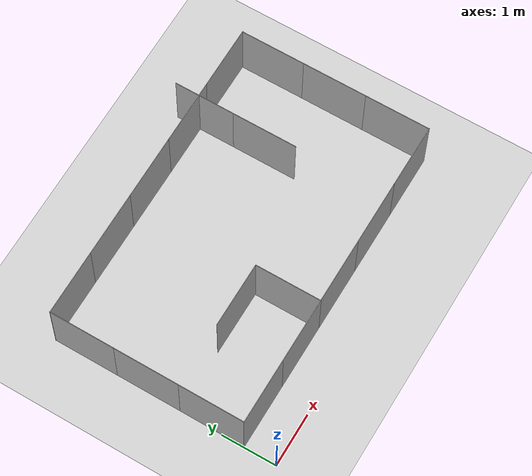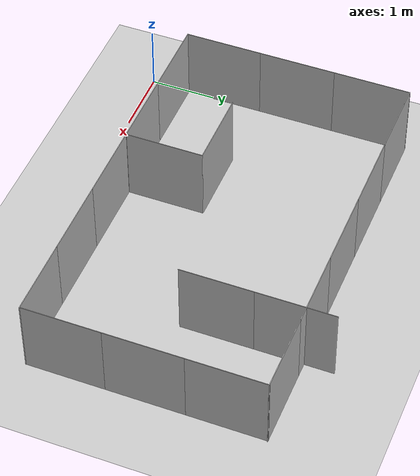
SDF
<?xml version="1.0"?>
<sdf version="1.6">
  <world name="default">

    <include>
      <uri>model://ground_plane</uri>
    </include>

    <include>
      <uri>model://sun</uri>
    </include>

    <scene>
      <shadows>false</shadows>
    </scene>

    <gui fullscreen='0'>
      <camera name='world_camera'>
        <pose frame=''>2.95 2.42 6.35 0 1.570384 1.570384</pose>
        <view_controller>orbit</view_controller>
        <projection_type>perspective</projection_type>
      </camera>
    </gui>

    <physics type="ode">
      <real_time_update_rate>500.0</real_time_update_rate>
      <max_step_size>0.002</max_step_size>
      <real_time_factor>1</real_time_factor>
      <ode>
        <solver>
          <type>quick</type>
          <precon_iters>0</precon_iters>
          <sor>1.400000</sor>
          <use_dynamic_moi_rescaling>1</use_dynamic_moi_rescaling>
        </solver>
        <constraints>
          <cfm>0.00001</cfm>
          <erp>0.2</erp>
          <contact_max_correcting_vel>2000.000000</contact_max_correcting_vel>
          <contact_surface_layer>0.01000</contact_surface_layer>
        </constraints>
      </ode>
    </physics>

    <!-- Maze Model -->
    <model name="maze">
      <static>1</static>
      <include>
        <uri>model://maze</uri>
      </include>
    </model>

    <!-- Camera Sensor -->
    <model name="camera_model">
      <static>1</static>
      <pose>1 1 2 0 0 0</pose>
      <link name="camera_link">
      <always_on>true</always_on>
        <sensor name="camera_sensor" type="camera">
          <pose>0 0 1 0 0 0</pose>
          <camera>
            <horizontal_fov>1.047</horizontal_fov>
            <image>
              <width>1280</width>
              <height>720</height>
              <format>R8G8B8</format>
            </image>
            <clip>
              <near>0.5</near>
              <far>10</far>
            </clip>
            <noise>
              <type>gaussian</type>
              <mean>0.0</mean>
              <stddev>0.007</stddev>
            </noise>
          </camera>
          <plugin name="world_camera" filename="libgazebo_ros_camera.so">
            <always_on>true</always_on>
            <update_rate>30</update_rate>
            <camera_name>world_cam</camera_name>
            <image_topic_name>/world_cam/image</image_topic_name>
            <frame_name>camera_frame</frame_name>
          </plugin>
        </sensor>
      </link>
    </model>

  </world>
</sdf>

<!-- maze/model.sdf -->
<sdf version='1.7'>
  <model name='assembled_maze'>
    <static>1</static>
    <link name='base_link'>
      <pose>0 0 0 0 0 0</pose>

      <!-- Wall 1 -->
      <collision name='wall_1_collision'>
        <geometry>
          <mesh>
            <uri>model://nist_maze_wall_120/meshes/nist_maze_wall_120.dae</uri>
            <scale>1 1 1</scale>
          </mesh>
        </geometry>
        <pose>0.6 0 0 0 -0 0</pose>
      </collision>
      <visual name='wall_1_visual'>
        <geometry>
          <mesh>
            <uri>model://nist_maze_wall_120/meshes/nist_maze_wall_120.dae</uri>
            <scale>1 1 1</scale>
          </mesh>
        </geometry>
        <pose>0.6 0 0 0 -0 0</pose>
      </visual>

      <!-- Wall 2 -->
      <collision name='wall_2_collision'>
        <geometry>
          <mesh>
            <uri>model://nist_maze_wall_120/meshes/nist_maze_wall_120.dae</uri>
            <scale>1 1 1</scale>
          </mesh>
        </geometry>
        <pose>2.96 0 0 0 -0 0</pose>
      </collision>
      <visual name='wall_2_visual'>
        <geometry>
          <mesh>
            <uri>model://nist_maze_wall_120/meshes/nist_maze_wall_120.dae</uri>
            <scale>1 1 1</scale>
          </mesh>
        </geometry>
        <pose>2.96 0 0 0 -0 0</pose>
      </visual>

      <!-- Wall 3 -->
      <collision name='wall_3_collision'>
        <geometry>
          <mesh>
            <uri>model://nist_maze_wall_120/meshes/nist_maze_wall_120.dae</uri>
            <scale>1 1 1</scale>
          </mesh>
        </geometry>
        <pose>1.765 1.19 0 0 -0 0</pose>
      </collision>
      <visual name='wall_3_visual'>
        <geometry>
          <mesh>
            <uri>model://nist_maze_wall_120/meshes/nist_maze_wall_120.dae</uri>
            <scale>1 1 1</scale>
          </mesh>
        </geometry>
        <pose>1.765 1.19 0 0 -0 0</pose>
      </visual>

      <!-- Wall 4 -->
      <collision name='wall_4_collision'>
        <geometry>
          <mesh>
            <uri>model://nist_maze_wall_120/meshes/nist_maze_wall_120.dae</uri>
            <scale>1 1 1</scale>
          </mesh>
        </geometry>
        <pose>2.96 1.195 0 0 -0 1.5708</pose>
      </collision>
      <visual name='wall_4_visual'>
        <geometry>
          <mesh>
            <uri>model://nist_maze_wall_120/meshes/nist_maze_wall_120.dae</uri>
            <scale>1 1 1</scale>
          </mesh>
        </geometry>
        <pose>2.96 1.195 0 0 -0 1.5708</pose>
      </visual>

      <!-- Wall 5 -->
      <collision name='wall_5_collision'>
        <geometry>
          <mesh>
            <uri>model://nist_maze_wall_120/meshes/nist_maze_wall_120.dae</uri>
            <scale>1 1 1</scale>
          </mesh>
        </geometry>
        <pose>0.61 1.195 0 0 -0 1.5708</pose>
      </collision>
      <visual name='wall_5_visual'>
        <geometry>
          <mesh>
            <uri>model://nist_maze_wall_120/meshes/nist_maze_wall_120.dae</uri>
            <scale>1 1 1</scale>
          </mesh>
        </geometry>
        <pose>0.61 1.195 0 0 -0 1.5708</pose>
      </visual>

      <!-- Wall 6 -->
      <collision name='wall_6_collision'>
        <geometry>
          <mesh>
            <uri>model://nist_maze_wall_120/meshes/nist_maze_wall_120.dae</uri>
            <scale>1 1 1</scale>
          </mesh>
        </geometry>
        <pose>5.1 4 0 0 -0 1.5708</pose>
      </collision>
      <visual name='wall_6_visual'>
        <geometry>
          <mesh>
            <uri>model://nist_maze_wall_120/meshes/nist_maze_wall_120.dae</uri>
            <scale>1 1 1</scale>
          </mesh>
        </geometry>
        <pose>5.1 4 0 0 -0 1.5708</pose>
      </visual>

      <!-- Wall 7 -->
      <collision name='wall_7_collision'>
        <geometry>
          <mesh>
            <uri>model://nist_maze_wall_120/meshes/nist_maze_wall_120.dae</uri>
            <scale>1 1 1</scale>
          </mesh>
        </geometry>
        <pose>6.5 3.56 0 0 -0 1.5708</pose>
      </collision>
      <visual name='wall_7_visual'>
        <geometry>
          <mesh>
            <uri>model://nist_maze_wall_120/meshes/nist_maze_wall_120.dae</uri>
            <scale>1 1 1</scale>
          </mesh>
        </geometry>
        <pose>6.5 3.56 0 0 -0 1.5708</pose>
      </visual>

      <!-- Wall 8 -->
      <collision name='wall_8_collision'>
        <geometry>
          <mesh>
            <uri>model://nist_maze_wall_120/meshes/nist_maze_wall_120.dae</uri>
            <scale>1 1 1</scale>
          </mesh>
        </geometry>
        <pose>5.1 2.9 0 0 -0 1.5708</pose>
      </collision>
      <visual name='wall_8_visual'>
        <geometry>
          <mesh>
            <uri>model://nist_maze_wall_120/meshes/nist_maze_wall_120.dae</uri>
            <scale>1 1 1</scale>
          </mesh>
        </geometry>
        <pose>5.1 2.9 0 0 -0 1.5708</pose>
      </visual>

      <!-- Wall 9 -->
      <collision name='wall_9_collision'>
        <geometry>
          <mesh>
            <uri>model://nist_maze_wall_120/meshes/nist_maze_wall_120.dae</uri>
            <scale>1 1 1</scale>
          </mesh>
        </geometry>
        <pose>6.5 2.38 0 0 -0 1.5708</pose>
      </collision>
      <visual name='wall_9_visual'>
        <geometry>
          <mesh>
            <uri>model://nist_maze_wall_120/meshes/nist_maze_wall_120.dae</uri>
            <scale>1 1 1</scale>
          </mesh>
        </geometry>
        <pose>6.5 2.38 0 0 -0 1.5708</pose>
      </visual>

      <!-- Wall 10 -->
      <collision name='wall_10_collision'>
        <geometry>
          <mesh>
            <uri>model://nist_maze_wall_120/meshes/nist_maze_wall_120.dae</uri>
            <scale>1 1 1</scale>
          </mesh>
        </geometry>
        <pose>6.5 1.196 0 0 -0 1.5708</pose>
      </collision>
      <visual name='wall_10_visual'>
        <geometry>
          <mesh>
            <uri>model://nist_maze_wall_120/meshes/nist_maze_wall_120.dae</uri>
            <scale>1 1 1</scale>
          </mesh>
        </geometry>
        <pose>6.5 1.196 0 0 -0 1.5708</pose>
      </visual>

      <!-- Wall 11 -->
      <collision name='wall_11_collision'>
        <geometry>
          <mesh>
            <uri>model://nist_maze_wall_120/meshes/nist_maze_wall_120.dae</uri>
            <scale>1 1 1</scale>
          </mesh>
        </geometry>
        <pose>0.61 2.38 0 0 -0 1.5708</pose>
      </collision>
      <visual name='wall_11_visual'>
        <geometry>
          <mesh>
            <uri>model://nist_maze_wall_120/meshes/nist_maze_wall_120.dae</uri>
            <scale>1 1 1</scale>
          </mesh>
        </geometry>
        <pose>0.61 2.38 0 0 -0 1.5708</pose>
      </visual>

      <!-- Wall 12 -->
      <collision name='wall_12_collision'>
        <geometry>
          <mesh>
            <uri>model://nist_maze_wall_120/meshes/nist_maze_wall_120.dae</uri>
            <scale>1 1 1</scale>
          </mesh>
        </geometry>
        <pose>0.61 3.56 0 0 -0 1.5708</pose>
      </collision>
      <visual name='wall_12_visual'>
        <geometry>
          <mesh>
            <uri>model://nist_maze_wall_120/meshes/nist_maze_wall_120.dae</uri>
            <scale>1 1 1</scale>
          </mesh>
        </geometry>
        <pose>0.61 3.56 0 0 -0 1.5708</pose>
      </visual>

      <!-- Wall 13 -->
      <collision name='wall_13_collision'>
        <geometry>
          <mesh>
            <uri>model://nist_maze_wall_120/meshes/nist_maze_wall_120.dae</uri>
            <scale>1 1 1</scale>
          </mesh>
        </geometry>
        <pose>1.78 0 0 0 -0 0</pose>
      </collision>
      <visual name='wall_13_visual'>
        <geometry>
          <mesh>
            <uri>model://nist_maze_wall_120/meshes/nist_maze_wall_120.dae</uri>
            <scale>1 1 1</scale>
          </mesh>
        </geometry>
        <pose>1.78 0 0 0 -0 0</pose>
      </visual>

      <!-- Wall 14 -->
      <collision name='wall_14_collision'>
        <geometry>
          <mesh>
            <uri>model://nist_maze_wall_120/meshes/nist_maze_wall_120.dae</uri>
            <scale>1 1 1</scale>
          </mesh>
        </geometry>
        <pose>0.6 3.55 0 0 -0 0</pose>
      </collision>
      <visual name='wall_14_visual'>
        <geometry>
          <mesh>
            <uri>model://nist_maze_wall_120/meshes/nist_maze_wall_120.dae</uri>
            <scale>1 1 1</scale>
          </mesh>
        </geometry>
        <pose>0.6 3.55 0 0 -0 0</pose>
      </visual>

      <!-- Wall 15 -->
      <collision name='wall_15_collision'>
        <geometry>
          <mesh>
            <uri>model://nist_maze_wall_120/meshes/nist_maze_wall_120.dae</uri>
            <scale>1 1 1</scale>
          </mesh>
        </geometry>
        <pose>1.78 3.55 0 0 -0 0</pose>
      </collision>
      <visual name='wall_15_visual'>
        <geometry>
          <mesh>
            <uri>model://nist_maze_wall_120/meshes/nist_maze_wall_120.dae</uri>
            <scale>1 1 1</scale>
          </mesh>
        </geometry>
        <pose>1.78 3.55 0 0 -0 0</pose>
      </visual>

      <!-- Wall 16 -->
      <collision name='wall_16_collision'>
        <geometry>
          <mesh>
            <uri>model://nist_maze_wall_120/meshes/nist_maze_wall_120.dae</uri>
            <scale>1 1 1</scale>
          </mesh>
        </geometry>
        <pose>2.96 3.55 0 0 -0 0</pose>
      </collision>
      <visual name='wall_16_visual'>
        <geometry>
          <mesh>
            <uri>model://nist_maze_wall_120/meshes/nist_maze_wall_120.dae</uri>
            <scale>1 1 1</scale>
          </mesh>
        </geometry>
        <pose>2.96 3.55 0 0 -0 0</pose>
      </visual>

      <!-- Wall 17 -->
      <collision name='wall_17_collision'>
        <geometry>
          <mesh>
            <uri>model://nist_maze_wall_120/meshes/nist_maze_wall_120.dae</uri>
            <scale>1 1 1</scale>
          </mesh>
        </geometry>
        <pose>4.14 3.55 0 0 -0 0</pose>
      </collision>
      <visual name='wall_17_visual'>
        <geometry>
          <mesh>
            <uri>model://nist_maze_wall_120/meshes/nist_maze_wall_120.dae</uri>
            <scale>1 1 1</scale>
          </mesh>
        </geometry>
        <pose>4.14 3.55 0 0 -0 0</pose>
      </visual>

      <!-- Wall 18 -->
      <collision name='wall_18_collision'>
        <geometry>
          <mesh>
            <uri>model://nist_maze_wall_120/meshes/nist_maze_wall_120.dae</uri>
            <scale>1 1 1</scale>
          </mesh>
        </geometry>
        <pose>5.32 3.55 0 0 -0 0</pose>
      </collision>
      <visual name='wall_18_visual'>
        <geometry>
          <mesh>
            <uri>model://nist_maze_wall_120/meshes/nist_maze_wall_120.dae</uri>
            <scale>1 1 1</scale>
          </mesh>
        </geometry>
        <pose>5.32 3.55 0 0 -0 0</pose>
      </visual>

      <!-- Wall 19 -->
      <collision name='wall_19_collision'>
        <geometry>
          <mesh>
            <uri>model://nist_maze_wall_120/meshes/nist_maze_wall_120.dae</uri>
            <scale>1 1 1</scale>
          </mesh>
        </geometry>
        <pose>4.14 0 0 0 -0 0</pose>
      </collision>
      <visual name='wall_19_visual'>
        <geometry>
          <mesh>
            <uri>model://nist_maze_wall_120/meshes/nist_maze_wall_120.dae</uri>
            <scale>1 1 1</scale>
          </mesh>
        </geometry>
        <pose>4.14 0 0 0 -0 0</pose>
      </visual>

      <!-- Wall 20 -->
      <collision name='wall_20_collision'>
        <geometry>
          <mesh>
            <uri>model://nist_maze_wall_120/meshes/nist_maze_wall_120.dae</uri>
            <scale>1 1 1</scale>
          </mesh>
        </geometry>
        <pose>5.32 0 0 0 -0 0</pose>
      </collision>
      <visual name='wall_20_visual'>
        <geometry>
          <mesh>
            <uri>model://nist_maze_wall_120/meshes/nist_maze_wall_120.dae</uri>
            <scale>1 1 1</scale>
          </mesh>
        </geometry>
        <pose>5.32 0 0 0 -0 0</pose>
      </visual>

    </link>
  </model>
</sdf>
